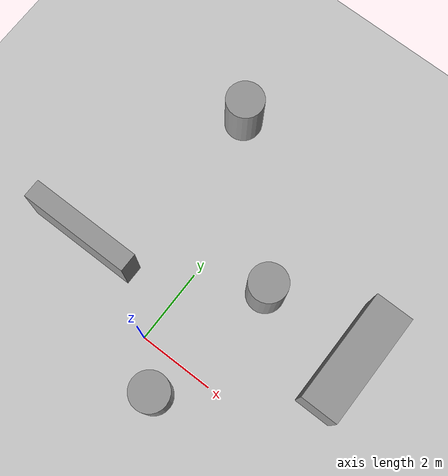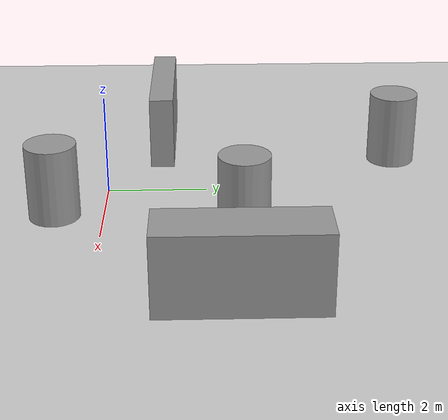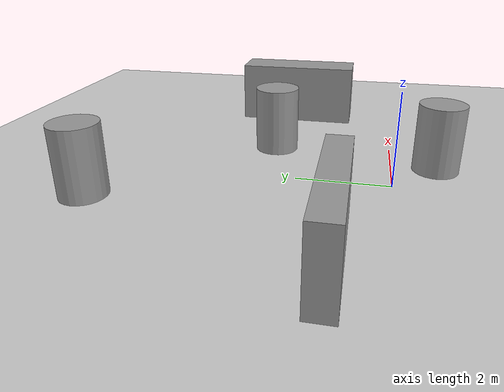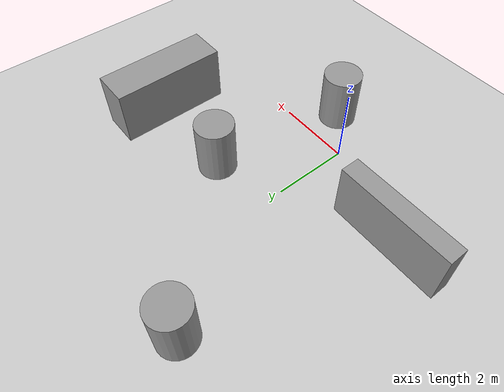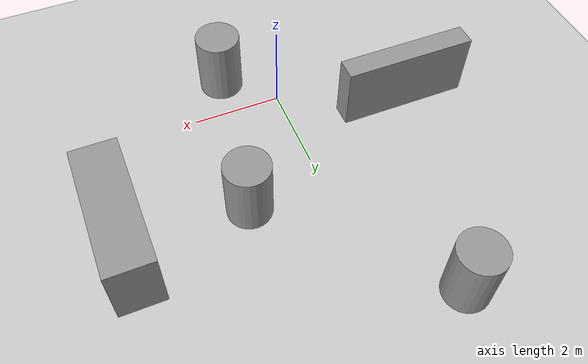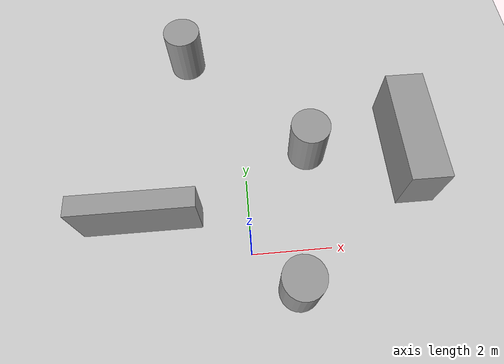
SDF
<sdf version="1.6">
 <world name="default">
  <light name="sun" type="directional">
   <pose>0 0 10 0 -0 0</pose>
   <diffuse>0.8 0.8 0.8 1</diffuse>
   <specular>0.2 0.2 0.2 1</specular>
   <attenuation>
    <range>1000</range>
    <constant>0.9</constant>
    <linear>0.01</linear>
    <quadratic>0.001</quadratic>
   </attenuation>
   <direction>-0.5 0.1 -0.9</direction>
  </light>
  <model name="ground_plane">
   <static>1</static>
   <link name="link">
    <collision name="collision">
     <geometry><plane><normal>0 0 1</normal><size>100 100</size></plane></geometry>
     <surface>
      <contact><collide_bitmask>65535</collide_bitmask></contact>
      <friction><ode><mu>100</mu><mu2>50</mu2></ode></friction>
     </surface>
    </collision>
    <visual name="visual">
     <cast_shadows>0</cast_shadows>
     <geometry><plane><normal>0 0 1</normal><size>100 100</size></plane></geometry>
     <material>
      <script><uri>file://media/materials/scripts/gazebo.material</uri><name>Gazebo/Grey</name></script>
     </material>
    </visual>
   </link>
  </model>
  <gravity>0 0 -9.8</gravity>
  <magnetic_field>6e-06 2.3e-05 -4.2e-05</magnetic_field>
  <atmosphere type="adiabatic"/>
  <physics name="default_physics" default="0" type="ode">
   <max_step_size>0.001</max_step_size>
   <real_time_factor>1</real_time_factor>
   <real_time_update_rate>1000</real_time_update_rate>
  </physics>
  <scene><ambient>0.4 0.4 0.4 1</ambient><background>0.7 0.7 0.7 1</background><shadows>1</shadows></scene>
  <spherical_coordinates>
   <surface_model>EARTH_WGS84</surface_model>
   <latitude_deg>0</latitude_deg>
   <longitude_deg>0</longitude_deg>
   <elevation>0</elevation>
   <heading_deg>0</heading_deg>
  </spherical_coordinates>
  <model name="unit_cylinder">
   <pose>1.6974 2.70537 0.499992 -3e-06 -4e-06 -0</pose>
   <static>true</static>
   <link name="link">
    <inertial>
     <mass>1</mass>
     <inertia><ixx>0.145833</ixx><ixy>0</ixy><ixz>0</ixz><iyy>0.145833</iyy><iyz>0</iyz><izz>0.125</izz></inertia>
    </inertial>
    <collision name="collision">
     <geometry><cylinder><radius>0.5</radius><length>2</length></cylinder></geometry>
    </collision>
    <visual name="visual">
     <geometry><cylinder><radius>0.5</radius><length>2</length></cylinder></geometry>
     <material>
      <script><name>Gazebo/Grey</name><uri>file://media/materials/scripts/gazebo.material</uri></script>
     </material>
    </visual>
   </link>
  </model>
  <model name="unit_box">
   <pose>-2.69557 1.06476 0.499995 -1e-05 0 0</pose>
   <link name="link">
    <inertial>
     <mass>1</mass>
     <inertia>
      <ixx>0.166667</ixx>
      <ixy>0</ixy>
      <ixz>0</ixz>
      <iyy>0.166667</iyy>
      <iyz>0</iyz>
      <izz>0.166667</izz>
     </inertia>
    </inertial>
    <collision name="collision"><geometry><box><size>3 0.5 2</size></box></geometry></collision>
    <visual name="visual">
     <geometry><box><size>3 0.5 2</size></box></geometry>
     <material>
      <script><name>Gazebo/Grey</name><uri>file://media/materials/scripts/gazebo.material</uri></script>
     </material>
    </visual>
   </link>
  </model>
  <model name="unit_cylinder_0">
   <pose>-1.51424 6.02496 0.499997 3e-06 4e-06 -0</pose>
   <link name="link">
    <inertial>
     <mass>1</mass>
     <inertia><ixx>0.145833</ixx><ixy>0</ixy><ixz>0</ixz><iyy>0.145833</iyy><iyz>0</iyz><izz>0.125</izz></inertia>
    </inertial>
    <collision name="collision">
     <geometry><cylinder><radius>0.5</radius><length>2</length></cylinder></geometry>
    </collision>
    <visual name="visual">
     <geometry><cylinder><radius>0.5</radius><length>2</length></cylinder></geometry>
     <material>
      <script><name>Gazebo/Grey</name><uri>file://media/materials/scripts/gazebo.material</uri></script>
     </material>
    </visual>
   </link>
  </model>
  <model name="unit_cylinder_1">
   <pose>1.06564 -0.957162 0.499993 -3e-06 -4e-06 -0</pose>
   <link name="link">
    <inertial>
     <mass>1</mass>
     <inertia><ixx>0.145833</ixx><ixy>0</ixy><ixz>0</ixz><iyy>0.145833</iyy><iyz>0</iyz><izz>0.125</izz></inertia>
    </inertial>
    <collision name="collision">
     <geometry><cylinder><radius>0.5</radius><length>2</length></cylinder></geometry>
    </collision>
    <visual name="visual">
     <geometry><cylinder><radius>0.5</radius><length>2</length></cylinder></geometry>
     <material>
      <script><name>Gazebo/Grey</name><uri>file://media/materials/scripts/gazebo.material</uri></script>
     </material>
    </visual>
   </link>
  </model>
  <model name="unit_box_0">
   <pose>4.35075 2.55387 0.5 0 -0 0</pose>
   <link name="link">
    <inertial>
     <mass>1</mass>
     <inertia>
      <ixx>0.166667</ixx>
      <ixy>0</ixy>
      <ixz>0</ixz>
      <iyy>0.166667</iyy>
      <iyz>0</iyz>
      <izz>0.166667</izz>
     </inertia>
    </inertial>
    <collision name="collision"><geometry><box><size>1 3 2</size></box></geometry></collision>
    <visual name="visual">
     <geometry><box><size>1 3 2</size></box></geometry>
     <material>
      <script><name>Gazebo/Grey</name><uri>file://media/materials/scripts/gazebo.material</uri></script>
     </material>
    </visual>
   </link>
  </model>
 </world>
</sdf>
